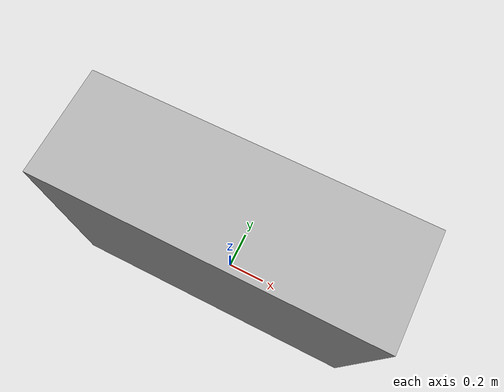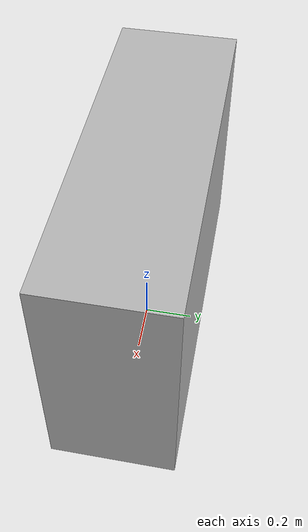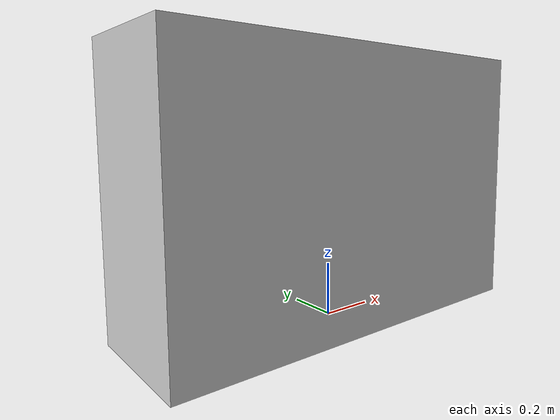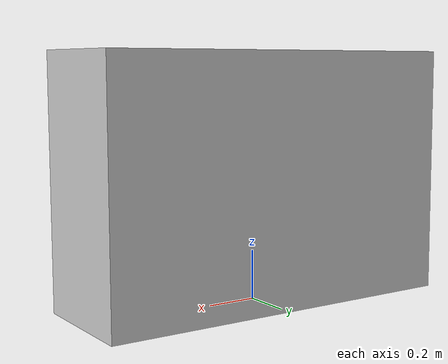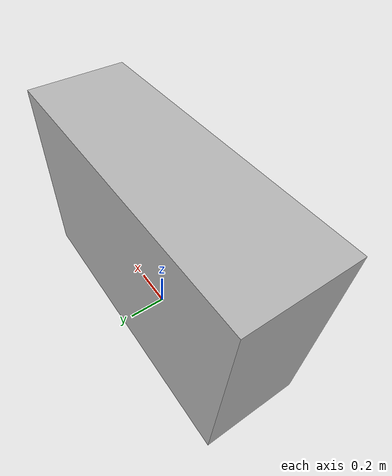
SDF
<?xml version="1.0"?>
<sdf version="1.7">

<model name="counter">

  <static>true</static>

  <link name="counter_link">

    <collision name="collision">
      <pose>0 0 0.5 0 0 0</pose>

      <geometry>
        <box>
          <size>1.5 0.5 1.0</size>
        </box>
      </geometry>
    </collision>

    <visual name="visual">
      <pose>0 0 0.5 0 0 0</pose>

      <geometry>
        <box>
          <size>1.5 0.5 1.0</size>
        </box>
      </geometry>
    </visual>

  </link>

</model>
</sdf>
